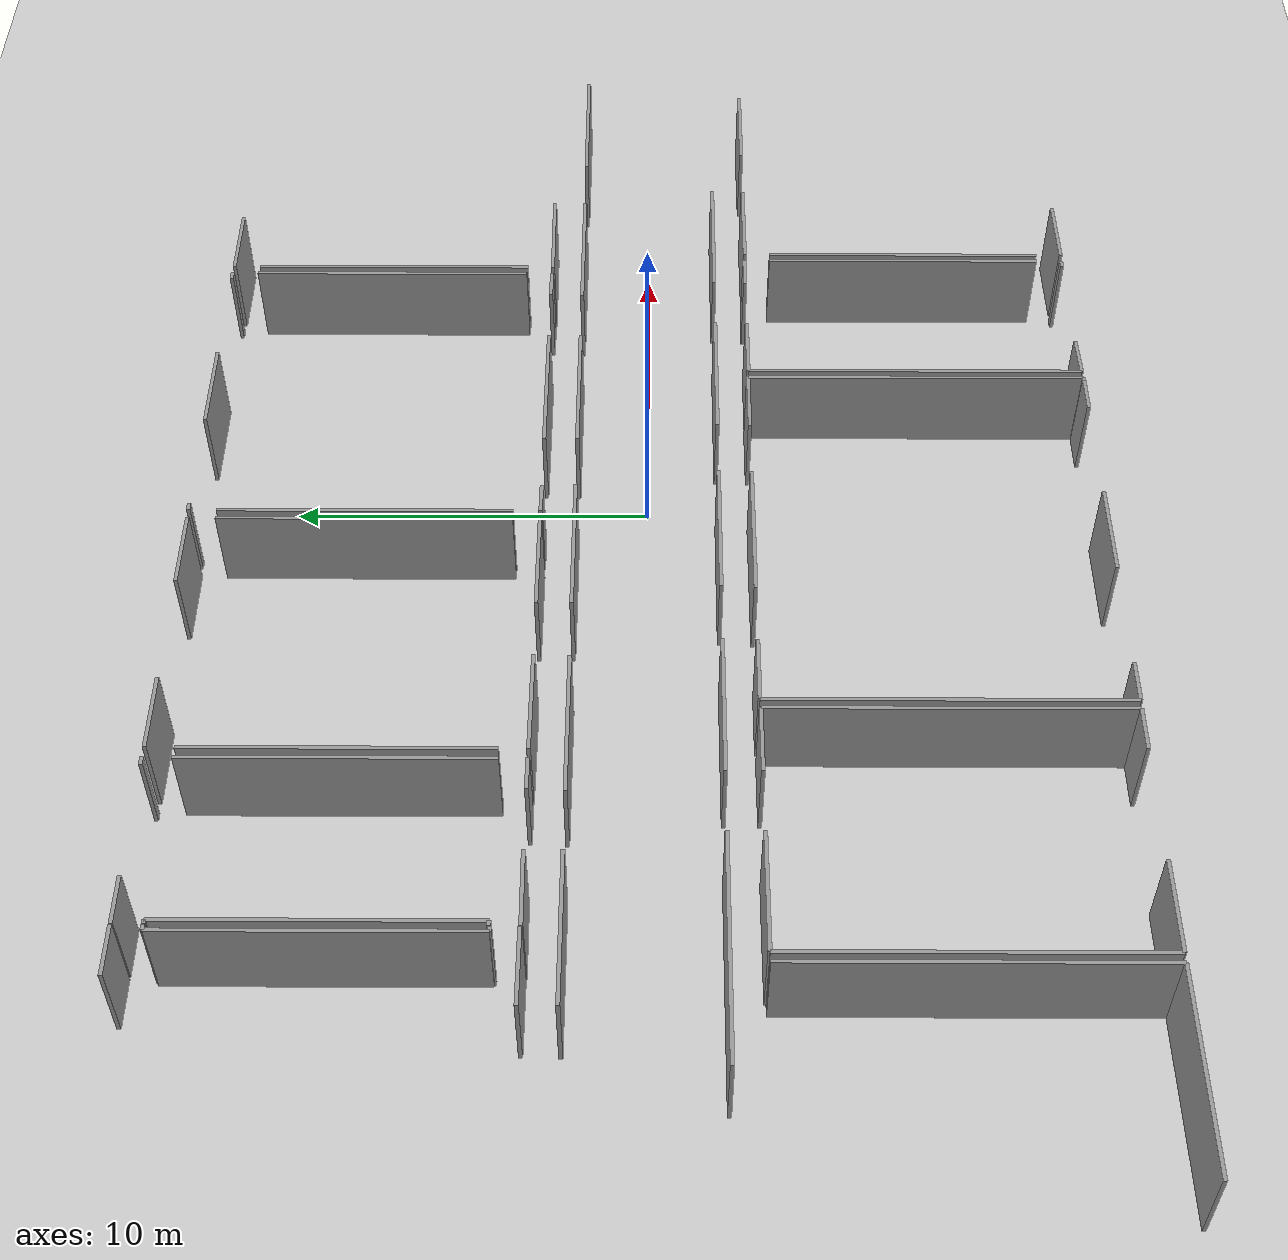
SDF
<sdf version="1.6">
 <world name="default">
  <model name="ground_plane">
   <static>1</static>
   <link name="link">
    <collision name="collision">
     <geometry><plane><normal>0 0 1</normal><size>100 100</size></plane></geometry>
     <surface><friction><ode><mu>100</mu><mu2>50</mu2></ode></friction></surface>
    </collision>
    <visual name="visual">
     <cast_shadows>0</cast_shadows>
     <geometry><plane><normal>0 0 1</normal><size>100 100</size></plane></geometry>
     <material>
      <script><uri>file://media/materials/scripts/gazebo.material</uri><name>Gazebo/Grey</name></script>
     </material>
    </visual>
   </link>
  </model>
  <model name="50052752">
   <static>1</static>
   <link name="Wall_23">
    <collision name="Wall_23_Collision">
     <geometry><box><size>4.22614742345 0.1 2.5</size></box></geometry>
     <pose>2.11307371173 0 1.25 0 0 0</pose>
    </collision>
    <visual name="Wall_23_Visual">
     <pose>2.11307371173 0 1.25 0 0 0</pose>
     <geometry><box><size>4.22614742345 0.1 2.5</size></box></geometry>
     <material>
      <script><uri>file://media/materials/scripts/gazebo.material</uri><name>Gazebo/Grey</name></script>
      <ambient>1 1 1 1</ambient>
     </material>
    </visual>
    <pose>21.8066922989 -10.5651782202 0 0 0 0.0</pose>
   </link>
   <link name="Wall_24">
    <collision name="Wall_24_Collision">
     <geometry><box><size>4.23706015963 0.1 2.5</size></box></geometry>
     <pose>2.11853007982 0 1.25 0 0 0</pose>
    </collision>
    <visual name="Wall_24_Visual">
     <pose>2.11853007982 0 1.25 0 0 0</pose>
     <geometry><box><size>4.23706015963 0.1 2.5</size></box></geometry>
     <material>
      <script><uri>file://media/materials/scripts/gazebo.material</uri><name>Gazebo/Grey</name></script>
      <ambient>1 1 1 1</ambient>
     </material>
    </visual>
    <pose>27.7805271105 -10.5651782202 0 0 0 0.0</pose>
   </link>
   <link name="Wall_25">
    <collision name="Wall_25_Collision">
     <geometry><box><size>4.22893905364 0.1 2.5</size></box></geometry>
     <pose>2.11446952682 0 1.25 0 0 0</pose>
    </collision>
    <visual name="Wall_25_Visual">
     <pose>2.11446952682 0 1.25 0 0 0</pose>
     <geometry><box><size>4.22893905364 0.1 2.5</size></box></geometry>
     <material>
      <script><uri>file://media/materials/scripts/gazebo.material</uri><name>Gazebo/Grey</name></script>
      <ambient>1 1 1 1</ambient>
     </material>
    </visual>
    <pose>33.8048650501 -10.5651782202 0 0 0 0.0</pose>
   </link>
   <link name="Wall_26">
    <collision name="Wall_26_Collision">
     <geometry><box><size>4.23820219016 0.1 2.5</size></box></geometry>
     <pose>2.11910109508 0 1.25 0 0 0</pose>
    </collision>
    <visual name="Wall_26_Visual">
     <pose>2.11910109508 0 1.25 0 0 0</pose>
     <geometry><box><size>4.23820219016 0.1 2.5</size></box></geometry>
     <material>
      <script><uri>file://media/materials/scripts/gazebo.material</uri><name>Gazebo/Grey</name></script>
      <ambient>1 1 1 1</ambient>
     </material>
    </visual>
    <pose>39.7934193663 -10.5651782202 0 0 0 0.0</pose>
   </link>
   <link name="Wall_27">
    <collision name="Wall_27_Collision">
     <geometry><box><size>4.2318575761 0.1 2.5</size></box></geometry>
     <pose>2.11592878805 0 1.25 0 0 0</pose>
    </collision>
    <visual name="Wall_27_Visual">
     <pose>2.11592878805 0 1.25 0 0 0</pose>
     <geometry><box><size>4.2318575761 0.1 2.5</size></box></geometry>
     <material>
      <script><uri>file://media/materials/scripts/gazebo.material</uri><name>Gazebo/Grey</name></script>
      <ambient>1 1 1 1</ambient>
     </material>
    </visual>
    <pose>45.7694113467 -10.5651782202 0 0 0 0.0</pose>
   </link>
   <link name="Wall_28">
    <collision name="Wall_28_Collision">
     <geometry><box><size>4.22678188486 0.1 2.5</size></box></geometry>
     <pose>2.11339094243 0 1.25 0 0 0</pose>
    </collision>
    <visual name="Wall_28_Visual">
     <pose>2.11339094243 0 1.25 0 0 0</pose>
     <geometry><box><size>4.22678188486 0.1 2.5</size></box></geometry>
     <material>
      <script><uri>file://media/materials/scripts/gazebo.material</uri><name>Gazebo/Grey</name></script>
      <ambient>1 1 1 1</ambient>
     </material>
    </visual>
    <pose>51.7961602396 -10.5651782202 0 0 0 0.0</pose>
   </link>
   <link name="Wall_38">
    <collision name="Wall_38_Collision">
     <geometry><box><size>4.25051074143 0.1 2.5</size></box></geometry>
     <pose>2.12525537072 0 1.25 0 0 0</pose>
    </collision>
    <visual name="Wall_38_Visual">
     <pose>2.12525537072 0 1.25 0 0 0</pose>
     <geometry><box><size>4.25051074143 0.1 2.5</size></box></geometry>
     <material>
      <script><uri>file://media/materials/scripts/gazebo.material</uri><name>Gazebo/Grey</name></script>
      <ambient>1 1 1 1</ambient>
     </material>
    </visual>
    <pose>50.6004542744 -14.5209181925 0 0 0 3.14159265359</pose>
   </link>
   <link name="Wall_39">
    <collision name="Wall_39_Collision">
     <geometry><box><size>4.21218927253 0.1 2.5</size></box></geometry>
     <pose>2.10609463626 0 1.25 0 0 0</pose>
    </collision>
    <visual name="Wall_39_Visual">
     <pose>2.10609463626 0 1.25 0 0 0</pose>
     <geometry><box><size>4.21218927253 0.1 2.5</size></box></geometry>
     <material>
      <script><uri>file://media/materials/scripts/gazebo.material</uri><name>Gazebo/Grey</name></script>
      <ambient>1 1 1 1</ambient>
     </material>
    </visual>
    <pose>44.5844912254 -14.5209181925 0 0 0 3.14159265359</pose>
   </link>
   <link name="Wall_40">
    <collision name="Wall_40_Collision">
     <geometry><box><size>4.19670841423 0.1 2.5</size></box></geometry>
     <pose>2.09835420711 0 1.25 0 0 0</pose>
    </collision>
    <visual name="Wall_40_Visual">
     <pose>2.09835420711 0 1.25 0 0 0</pose>
     <geometry><box><size>4.19670841423 0.1 2.5</size></box></geometry>
     <material>
      <script><uri>file://media/materials/scripts/gazebo.material</uri><name>Gazebo/Grey</name></script>
      <ambient>1 1 1 1</ambient>
     </material>
    </visual>
    <pose>38.5826132196 -14.5209181925 0 0 0 3.14159265359</pose>
   </link>
   <link name="Wall_41">
    <collision name="Wall_41_Collision">
     <geometry><box><size>4.20254545916 0.1 2.5</size></box></geometry>
     <pose>2.10127272958 0 1.25 0 0 0</pose>
    </collision>
    <visual name="Wall_41_Visual">
     <pose>2.10127272958 0 1.25 0 0 0</pose>
     <geometry><box><size>4.20254545916 0.1 2.5</size></box></geometry>
     <material>
      <script><uri>file://media/materials/scripts/gazebo.material</uri><name>Gazebo/Grey</name></script>
      <ambient>1 1 1 1</ambient>
     </material>
    </visual>
    <pose>32.581242783 -14.5209181925 0 0 0 3.14159265359</pose>
   </link>
   <link name="Wall_42">
    <collision name="Wall_42_Collision">
     <geometry><box><size>6.28941591483 0.1 2.5</size></box></geometry>
     <pose>3.14470795741 0 1.25 0 0 0</pose>
    </collision>
    <visual name="Wall_42_Visual">
     <pose>3.14470795741 0 1.25 0 0 0</pose>
     <geometry><box><size>6.28941591483 0.1 2.5</size></box></geometry>
     <material>
      <script><uri>file://media/materials/scripts/gazebo.material</uri><name>Gazebo/Grey</name></script>
      <ambient>1 1 1 1</ambient>
     </material>
    </visual>
    <pose>26.5947187433 -14.5209181925 0 0 0 3.14159265359</pose>
   </link>
   <link name="Wall_47">
    <collision name="Wall_47_Collision">
     <geometry><box><size>1.35774740823 0.1 2.5</size></box></geometry>
     <pose>0.678873704113 0 1.25 0 0 0</pose>
    </collision>
    <visual name="Wall_47_Visual">
     <pose>0.678873704113 0 1.25 0 0 0</pose>
     <geometry><box><size>1.35774740823 0.1 2.5</size></box></geometry>
     <material>
      <script><uri>file://media/materials/scripts/gazebo.material</uri><name>Gazebo/Grey</name></script>
      <ambient>1 1 1 1</ambient>
     </material>
    </visual>
    <pose>22.5360691309 -0.0 0 0 0 0.0</pose>
   </link>
   <link name="Wall_48">
    <collision name="Wall_48_Collision">
     <geometry><box><size>0.130191480452 0.1 2.5</size></box></geometry>
     <pose>0.0650957402261 0 1.25 0 0 0</pose>
    </collision>
    <visual name="Wall_48_Visual">
     <pose>0.0650957402261 0 1.25 0 0 0</pose>
     <geometry><box><size>0.130191480452 0.1 2.5</size></box></geometry>
     <material>
      <script><uri>file://media/materials/scripts/gazebo.material</uri><name>Gazebo/Grey</name></script>
      <ambient>1 1 1 1</ambient>
     </material>
    </visual>
    <pose>23.8938165391 -0.778611037091 0 0 0 3.14159265359</pose>
   </link>
   <link name="Wall_49">
    <collision name="Wall_49_Collision">
     <geometry><box><size>8.12681614577 0.1 2.5</size></box></geometry>
     <pose>4.06340807289 0 1.25 0 0 0</pose>
    </collision>
    <visual name="Wall_49_Visual">
     <pose>4.06340807289 0 1.25 0 0 0</pose>
     <geometry><box><size>8.12681614577 0.1 2.5</size></box></geometry>
     <material>
      <script><uri>file://media/materials/scripts/gazebo.material</uri><name>Gazebo/Grey</name></script>
      <ambient>1 1 1 1</ambient>
     </material>
    </visual>
    <pose>23.7636250587 -0.778611037091 0 0 0 -1.57079632679</pose>
   </link>
   <link name="Wall_50">
    <collision name="Wall_50_Collision">
     <geometry><box><size>0.115091298996 0.1 2.5</size></box></geometry>
     <pose>0.0575456494981 0 1.25 0 0 0</pose>
    </collision>
    <visual name="Wall_50_Visual">
     <pose>0.0575456494981 0 1.25 0 0 0</pose>
     <geometry><box><size>0.115091298996 0.1 2.5</size></box></geometry>
     <material>
      <script><uri>file://media/materials/scripts/gazebo.material</uri><name>Gazebo/Grey</name></script>
      <ambient>1 1 1 1</ambient>
     </material>
    </visual>
    <pose>23.7636250587 -8.90542718286 0 0 0 0.0</pose>
   </link>
   <link name="Wall_51">
    <collision name="Wall_51_Collision">
     <geometry><box><size>2.0725316279 0.1 2.5</size></box></geometry>
     <pose>1.03626581395 0 1.25 0 0 0</pose>
    </collision>
    <visual name="Wall_51_Visual">
     <pose>1.03626581395 0 1.25 0 0 0</pose>
     <geometry><box><size>2.0725316279 0.1 2.5</size></box></geometry>
     <material>
      <script><uri>file://media/materials/scripts/gazebo.material</uri><name>Gazebo/Grey</name></script>
      <ambient>1 1 1 1</ambient>
     </material>
    </visual>
    <pose>23.8787163577 -9.61551638814 0 0 0 3.14159265359</pose>
   </link>
   <link name="Wall_53">
    <collision name="Wall_53_Collision">
     <geometry><box><size>0.125115789207 0.1 2.5</size></box></geometry>
     <pose>0.0625578946033 0 1.25 0 0 0</pose>
    </collision>
    <visual name="Wall_53_Visual">
     <pose>0.0625578946033 0 1.25 0 0 0</pose>
     <geometry><box><size>0.125115789207 0.1 2.5</size></box></geometry>
     <material>
      <script><uri>file://media/materials/scripts/gazebo.material</uri><name>Gazebo/Grey</name></script>
      <ambient>1 1 1 1</ambient>
     </material>
    </visual>
    <pose>23.9233824406 -8.88423617191 0 0 0 0.0</pose>
   </link>
   <link name="Wall_54">
    <collision name="Wall_54_Collision">
     <geometry><box><size>8.10613270395 0.1 2.5</size></box></geometry>
     <pose>4.05306635197 0 1.25 0 0 0</pose>
    </collision>
    <visual name="Wall_54_Visual">
     <pose>4.05306635197 0 1.25 0 0 0</pose>
     <geometry><box><size>8.10613270395 0.1 2.5</size></box></geometry>
     <material>
      <script><uri>file://media/materials/scripts/gazebo.material</uri><name>Gazebo/Grey</name></script>
      <ambient>1 1 1 1</ambient>
     </material>
    </visual>
    <pose>24.0484982299 -8.88423617191 0 0 0 1.57079632679</pose>
   </link>
   <link name="Wall_55">
    <collision name="Wall_55_Collision">
     <geometry><box><size>0.111284530562 0.1 2.5</size></box></geometry>
     <pose>0.055642265281 0 1.25 0 0 0</pose>
    </collision>
    <visual name="Wall_55_Visual">
     <pose>0.055642265281 0 1.25 0 0 0</pose>
     <geometry><box><size>0.111284530562 0.1 2.5</size></box></geometry>
     <material>
      <script><uri>file://media/materials/scripts/gazebo.material</uri><name>Gazebo/Grey</name></script>
      <ambient>1 1 1 1</ambient>
     </material>
    </visual>
    <pose>24.0484982299 -0.778103467966 0 0 0 3.14159265359</pose>
   </link>
   <link name="Wall_56">
    <collision name="Wall_56_Collision">
     <geometry><box><size>1.32488230741 0.1 2.5</size></box></geometry>
     <pose>0.662441153705 0 1.25 0 0 0</pose>
    </collision>
    <visual name="Wall_56_Visual">
     <pose>0.662441153705 0 1.25 0 0 0</pose>
     <geometry><box><size>1.32488230741 0.1 2.5</size></box></geometry>
     <material>
      <script><uri>file://media/materials/scripts/gazebo.material</uri><name>Gazebo/Grey</name></script>
      <ambient>1 1 1 1</ambient>
     </material>
    </visual>
    <pose>23.9372136993 -0.00837489055541 0 0 0 0.0</pose>
   </link>
   <link name="Wall_57">
    <collision name="Wall_57_Collision">
     <geometry><box><size>0.227137183245 0.1 2.5</size></box></geometry>
     <pose>0.113568591623 0 1.25 0 0 0</pose>
    </collision>
    <visual name="Wall_57_Visual">
     <pose>0.113568591623 0 1.25 0 0 0</pose>
     <geometry><box><size>0.227137183245 0.1 2.5</size></box></geometry>
     <material>
      <script><uri>file://media/materials/scripts/gazebo.material</uri><name>Gazebo/Grey</name></script>
      <ambient>1 1 1 1</ambient>
     </material>
    </visual>
    <pose>28.5237352012 -0.00837489055541 0 0 0 0.0</pose>
   </link>
   <link name="Wall_58">
    <collision name="Wall_58_Collision">
     <geometry><box><size>8.1320187293 0.1 2.5</size></box></geometry>
     <pose>4.06600936465 0 1.25 0 0 0</pose>
    </collision>
    <visual name="Wall_58_Visual">
     <pose>4.06600936465 0 1.25 0 0 0</pose>
     <geometry><box><size>8.1320187293 0.1 2.5</size></box></geometry>
     <material>
      <script><uri>file://media/materials/scripts/gazebo.material</uri><name>Gazebo/Grey</name></script>
      <ambient>1 1 1 1</ambient>
     </material>
    </visual>
    <pose>28.7508723844 -0.752851904019 0 0 0 -1.57079632679</pose>
   </link>
   <link name="Wall_59">
    <collision name="Wall_59_Collision">
     <geometry><box><size>0.921111068814 0.1 2.5</size></box></geometry>
     <pose>0.460555534407 0 1.25 0 0 0</pose>
    </collision>
    <visual name="Wall_59_Visual">
     <pose>0.460555534407 0 1.25 0 0 0</pose>
     <geometry><box><size>0.921111068814 0.1 2.5</size></box></geometry>
     <material>
      <script><uri>file://media/materials/scripts/gazebo.material</uri><name>Gazebo/Grey</name></script>
      <ambient>1 1 1 1</ambient>
     </material>
    </visual>
    <pose>28.7508723844 -9.61044069689 0 0 0 3.14159265359</pose>
   </link>
   <link name="Wall_60">
    <collision name="Wall_60_Collision">
     <geometry><box><size>2.12051291307 0.1 2.5</size></box></geometry>
     <pose>1.06025645654 0 1.25 0 0 0</pose>
    </collision>
    <visual name="Wall_60_Visual">
     <pose>1.06025645654 0 1.25 0 0 0</pose>
     <geometry><box><size>2.12051291307 0.1 2.5</size></box></geometry>
     <material>
      <script><uri>file://media/materials/scripts/gazebo.material</uri><name>Gazebo/Grey</name></script>
      <ambient>1 1 1 1</ambient>
     </material>
    </visual>
    <pose>26.0437524585 -9.61044069689 0 0 0 -3.12998336069</pose>
   </link>
   <link name="Wall_61">
    <collision name="Wall_61_Collision">
     <geometry><box><size>8.09534686005 0.1 2.5</size></box></geometry>
     <pose>4.04767343003 0 1.25 0 0 0</pose>
    </collision>
    <visual name="Wall_61_Visual">
     <pose>4.04767343003 0 1.25 0 0 0</pose>
     <geometry><box><size>8.09534686005 0.1 2.5</size></box></geometry>
     <material>
      <script><uri>file://media/materials/scripts/gazebo.material</uri><name>Gazebo/Grey</name></script>
      <ambient>1 1 1 1</ambient>
     </material>
    </visual>
    <pose>29.0503381679 -8.86710571396 0 0 0 1.57079632679</pose>
   </link>
   <link name="Wall_62">
    <collision name="Wall_62_Collision">
     <geometry><box><size>2.2051340617 0.1 2.5</size></box></geometry>
     <pose>1.10256703085 0 1.25 0 0 0</pose>
    </collision>
    <visual name="Wall_62_Visual">
     <pose>1.10256703085 0 1.25 0 0 0</pose>
     <geometry><box><size>2.2051340617 0.1 2.5</size></box></geometry>
     <material>
      <script><uri>file://media/materials/scripts/gazebo.material</uri><name>Gazebo/Grey</name></script>
      <ambient>1 1 1 1</ambient>
     </material>
    </visual>
    <pose>29.0503381679 -0.0210641186697 0 0 0 0.0</pose>
   </link>
   <link name="Wall_63">
    <collision name="Wall_63_Collision">
     <geometry><box><size>2.25855571206 0.1 2.5</size></box></geometry>
     <pose>1.12927785603 0 1.25 0 0 0</pose>
    </collision>
    <visual name="Wall_63_Visual">
     <pose>1.12927785603 0 1.25 0 0 0</pose>
     <geometry><box><size>2.25855571206 0.1 2.5</size></box></geometry>
     <material>
      <script><uri>file://media/materials/scripts/gazebo.material</uri><name>Gazebo/Grey</name></script>
      <ambient>1 1 1 1</ambient>
     </material>
    </visual>
    <pose>34.5171114241 -0.0210641186697 0 0 0 0.0</pose>
   </link>
   <link name="Wall_64">
    <collision name="Wall_64_Collision">
     <geometry><box><size>8.10600581167 0.1 2.5</size></box></geometry>
     <pose>4.05300290583 0 1.25 0 0 0</pose>
    </collision>
    <visual name="Wall_64_Visual">
     <pose>4.05300290583 0 1.25 0 0 0</pose>
     <geometry><box><size>8.10600581167 0.1 2.5</size></box></geometry>
     <material>
      <script><uri>file://media/materials/scripts/gazebo.material</uri><name>Gazebo/Grey</name></script>
      <ambient>1 1 1 1</ambient>
     </material>
    </visual>
    <pose>36.7756671362 -0.778103467966 0 0 0 -1.57079632679</pose>
   </link>
   <link name="Wall_65">
    <collision name="Wall_65_Collision">
     <geometry><box><size>2.97740048473 0.1 2.5</size></box></geometry>
     <pose>1.48870024236 0 1.25 0 0 0</pose>
    </collision>
    <visual name="Wall_65_Visual">
     <pose>1.48870024236 0 1.25 0 0 0</pose>
     <geometry><box><size>2.97740048473 0.1 2.5</size></box></geometry>
     <material>
      <script><uri>file://media/materials/scripts/gazebo.material</uri><name>Gazebo/Grey</name></script>
      <ambient>1 1 1 1</ambient>
     </material>
    </visual>
    <pose>36.7756671362 -9.62820561625 0 0 0 3.14159265359</pose>
   </link>
   <link name="Wall_66">
    <collision name="Wall_66_Collision">
     <geometry><box><size>2.97450902845 0.1 2.5</size></box></geometry>
     <pose>1.48725451423 0 1.25 0 0 0</pose>
    </collision>
    <visual name="Wall_66_Visual">
     <pose>1.48725451423 0 1.25 0 0 0</pose>
     <geometry><box><size>2.97450902845 0.1 2.5</size></box></geometry>
     <material>
      <script><uri>file://media/materials/scripts/gazebo.material</uri><name>Gazebo/Grey</name></script>
      <ambient>1 1 1 1</ambient>
     </material>
    </visual>
    <pose>32.0248201302 -9.62820561625 0 0 0 3.13732664986</pose>
   </link>
   <link name="Wall_67">
    <collision name="Wall_67_Collision">
     <geometry><box><size>8.10384864289 0.1 2.5</size></box></geometry>
     <pose>4.05192432144 0 1.25 0 0 0</pose>
    </collision>
    <visual name="Wall_67_Visual">
     <pose>4.05192432144 0 1.25 0 0 0</pose>
     <geometry><box><size>8.10384864289 0.1 2.5</size></box></geometry>
     <material>
      <script><uri>file://media/materials/scripts/gazebo.material</uri><name>Gazebo/Grey</name></script>
      <ambient>1 1 1 1</ambient>
     </material>
    </visual>
    <pose>37.0668849214 -8.88245967998 0 0 0 1.57079632679</pose>
   </link>
   <link name="Wall_68">
    <collision name="Wall_68_Collision">
     <geometry><box><size>0.215843770223 0.1 2.5</size></box></geometry>
     <pose>0.107921885112 0 1.25 0 0 0</pose>
    </collision>
    <visual name="Wall_68_Visual">
     <pose>0.107921885112 0 1.25 0 0 0</pose>
     <geometry><box><size>0.215843770223 0.1 2.5</size></box></geometry>
     <material>
      <script><uri>file://media/materials/scripts/gazebo.material</uri><name>Gazebo/Grey</name></script>
      <ambient>1 1 1 1</ambient>
     </material>
    </visual>
    <pose>37.0668849214 -0.00139581509257 0 0 0 0.0</pose>
   </link>
   <link name="Wall_69">
    <collision name="Wall_69_Collision">
     <geometry><box><size>2.74429936427 0.1 2.5</size></box></geometry>
     <pose>1.37214968213 0 1.25 0 0 0</pose>
    </collision>
    <visual name="Wall_69_Visual">
     <pose>1.37214968213 0 1.25 0 0 0</pose>
     <geometry><box><size>2.74429936427 0.1 2.5</size></box></geometry>
     <material>
      <script><uri>file://media/materials/scripts/gazebo.material</uri><name>Gazebo/Grey</name></script>
      <ambient>1 1 1 1</ambient>
     </material>
    </visual>
    <pose>40.4977984189 -0.00139581509257 0 0 0 0.0</pose>
   </link>
   <link name="Wall_70">
    <collision name="Wall_70_Collision">
     <geometry><box><size>0.252388747193 0.1 2.5</size></box></geometry>
     <pose>0.126194373596 0 1.25 0 0 0</pose>
    </collision>
    <visual name="Wall_70_Visual">
     <pose>0.126194373596 0 1.25 0 0 0</pose>
     <geometry><box><size>0.252388747193 0.1 2.5</size></box></geometry>
     <material>
      <script><uri>file://media/materials/scripts/gazebo.material</uri><name>Gazebo/Grey</name></script>
      <ambient>1 1 1 1</ambient>
     </material>
    </visual>
    <pose>46.4848300278 -0.00139581509257 0 0 0 0.0</pose>
   </link>
   <link name="Wall_71">
    <collision name="Wall_71_Collision">
     <geometry><box><size>8.11044704151 0.1 2.5</size></box></geometry>
     <pose>4.05522352075 0 1.25 0 0 0</pose>
    </collision>
    <visual name="Wall_71_Visual">
     <pose>4.05522352075 0 1.25 0 0 0</pose>
     <geometry><box><size>8.11044704151 0.1 2.5</size></box></geometry>
     <material>
      <script><uri>file://media/materials/scripts/gazebo.material</uri><name>Gazebo/Grey</name></script>
      <ambient>1 1 1 1</ambient>
     </material>
    </visual>
    <pose>46.737218775 -0.765414239852 0 0 0 -1.57079632679</pose>
   </link>
   <link name="Wall_72">
    <collision name="Wall_72_Collision">
     <geometry><box><size>0.937480173081 0.1 2.5</size></box></geometry>
     <pose>0.468740086541 0 1.25 0 0 0</pose>
    </collision>
    <visual name="Wall_72_Visual">
     <pose>0.468740086541 0 1.25 0 0 0</pose>
     <geometry><box><size>0.937480173081 0.1 2.5</size></box></geometry>
     <material>
      <script><uri>file://media/materials/scripts/gazebo.material</uri><name>Gazebo/Grey</name></script>
      <ambient>1 1 1 1</ambient>
     </material>
    </visual>
    <pose>46.737218775 -9.63505779943 0 0 0 3.14159265359</pose>
   </link>
   <link name="Wall_73">
    <collision name="Wall_73_Collision">
     <geometry><box><size>4.23693326735 0.1 2.5</size></box></geometry>
     <pose>2.11846663367 0 1.25 0 0 0</pose>
    </collision>
    <visual name="Wall_73_Visual">
     <pose>2.11846663367 0 1.25 0 0 0</pose>
     <geometry><box><size>4.23693326735 0.1 2.5</size></box></geometry>
     <material>
      <script><uri>file://media/materials/scripts/gazebo.material</uri><name>Gazebo/Grey</name></script>
      <ambient>1 1 1 1</ambient>
     </material>
    </visual>
    <pose>44.0392350933 -9.63505779943 0 0 0 3.14159265359</pose>
   </link>
   <link name="Wall_74">
    <collision name="Wall_74_Collision">
     <geometry><box><size>0.945096469955 0.1 2.5</size></box></geometry>
     <pose>0.472548234977 0 1.25 0 0 0</pose>
    </collision>
    <visual name="Wall_74_Visual">
     <pose>0.472548234977 0 1.25 0 0 0</pose>
     <geometry><box><size>0.945096469955 0.1 2.5</size></box></geometry>
     <material>
      <script><uri>file://media/materials/scripts/gazebo.material</uri><name>Gazebo/Grey</name></script>
      <ambient>1 1 1 1</ambient>
     </material>
    </visual>
    <pose>38.0119786313 -9.63505779943 0 0 0 3.13917590212</pose>
   </link>
   <link name="Wall_75">
    <collision name="Wall_75_Collision">
     <geometry><box><size>8.11425380994 0.1 2.5</size></box></geometry>
     <pose>4.05712690497 0 1.25 0 0 0</pose>
    </collision>
    <visual name="Wall_75_Visual">
     <pose>4.05712690497 0 1.25 0 0 0</pose>
     <geometry><box><size>8.11425380994 0.1 2.5</size></box></geometry>
     <material>
      <script><uri>file://media/materials/scripts/gazebo.material</uri><name>Gazebo/Grey</name></script>
      <ambient>1 1 1 1</ambient>
     </material>
    </visual>
    <pose>47.0312281904 -8.90542718286 0 0 0 1.57079632679</pose>
   </link>
   <link name="Wall_76">
    <collision name="Wall_76_Collision">
     <geometry><box><size>2.24764297588 0.1 2.5</size></box></geometry>
     <pose>1.12382148794 0 1.25 0 0 0</pose>
    </collision>
    <visual name="Wall_76_Visual">
     <pose>1.12382148794 0 1.25 0 0 0</pose>
     <geometry><box><size>2.24764297588 0.1 2.5</size></box></geometry>
     <material>
      <script><uri>file://media/materials/scripts/gazebo.material</uri><name>Gazebo/Grey</name></script>
      <ambient>1 1 1 1</ambient>
     </material>
    </visual>
    <pose>47.0312281904 -0.0236019642925 0 0 0 0.0</pose>
   </link>
   <link name="Wall_80">
    <collision name="Wall_80_Collision">
     <geometry><box><size>2.98197961406 0.1 2.5</size></box></geometry>
     <pose>1.49098980703 0 1.25 0 0 0</pose>
    </collision>
    <visual name="Wall_80_Visual">
     <pose>1.49098980703 0 1.25 0 0 0</pose>
     <geometry><box><size>2.98197961406 0.1 2.5</size></box></geometry>
     <material>
      <script><uri>file://media/materials/scripts/gazebo.material</uri><name>Gazebo/Grey</name></script>
      <ambient>1 1 1 1</ambient>
     </material>
    </visual>
    <pose>50.013069905 -9.6251602015 0 0 0 -3.13197551957</pose>
   </link>
   <link name="Wall_132">
    <collision name="Wall_132_Collision">
     <geometry><box><size>8.10549824254 0.1 2.5</size></box></geometry>
     <pose>4.05274912127 0 1.25 0 0 0</pose>
    </collision>
    <visual name="Wall_132_Visual">
     <pose>4.05274912127 0 1.25 0 0 0</pose>
     <geometry><box><size>8.10549824254 0.1 2.5</size></box></geometry>
     <material>
      <script><uri>file://media/materials/scripts/gazebo.material</uri><name>Gazebo/Grey</name></script>
      <ambient>1 1 1 1</ambient>
     </material>
    </visual>
    <pose>47.6260992044 -24.3224586648 0 0 0 1.57079632679</pose>
   </link>
   <link name="Wall_133">
    <collision name="Wall_133_Collision">
     <geometry><box><size>2.92816627965 0.1 2.5</size></box></geometry>
     <pose>1.46408313982 0 1.25 0 0 0</pose>
    </collision>
    <visual name="Wall_133_Visual">
     <pose>1.46408313982 0 1.25 0 0 0</pose>
     <geometry><box><size>2.92816627965 0.1 2.5</size></box></geometry>
     <material>
      <script><uri>file://media/materials/scripts/gazebo.material</uri><name>Gazebo/Grey</name></script>
      <ambient>1 1 1 1</ambient>
     </material>
    </visual>
    <pose>47.6260992044 -15.4696917786 0 0 0 0.0</pose>
   </link>
   <link name="Wall_134">
    <collision name="Wall_134_Collision">
     <geometry><box><size>2.93692184704 0.1 2.5</size></box></geometry>
     <pose>1.46846092352 0 1.25 0 0 0</pose>
    </collision>
    <visual name="Wall_134_Visual">
     <pose>1.46846092352 0 1.25 0 0 0</pose>
     <geometry><box><size>2.93692184704 0.1 2.5</size></box></geometry>
     <material>
      <script><uri>file://media/materials/scripts/gazebo.material</uri><name>Gazebo/Grey</name></script>
      <ambient>1 1 1 1</ambient>
     </material>
    </visual>
    <pose>52.3467458475 -15.4696917786 0 0 0 0.0</pose>
   </link>
   <link name="Wall_137">
    <collision name="Wall_137_Collision">
     <geometry><box><size>2.17679564198 0.1 2.5</size></box></geometry>
     <pose>1.08839782099 0 1.25 0 0 0</pose>
    </collision>
    <visual name="Wall_137_Visual">
     <pose>1.08839782099 0 1.25 0 0 0</pose>
     <geometry><box><size>2.17679564198 0.1 2.5</size></box></geometry>
     <material>
      <script><uri>file://media/materials/scripts/gazebo.material</uri><name>Gazebo/Grey</name></script>
      <ambient>1 1 1 1</ambient>
     </material>
    </visual>
    <pose>49.8028093951 -25.0536119888 0 0 0 -3.13273197841</pose>
   </link>
   <link name="Wall_138">
    <collision name="Wall_138_Collision">
     <geometry><box><size>9.64165619805 0.1 2.5</size></box></geometry>
     <pose>4.82082809903 0 1.25 0 0 0</pose>
    </collision>
    <visual name="Wall_138_Visual">
     <pose>4.82082809903 0 1.25 0 0 0</pose>
     <geometry><box><size>9.64165619805 0.1 2.5</size></box></geometry>
     <material>
      <script><uri>file://media/materials/scripts/gazebo.material</uri><name>Gazebo/Grey</name></script>
      <ambient>1 1 1 1</ambient>
     </material>
    </visual>
    <pose>42.5790856142 -25.09206035 0 0 0 1.57079632679</pose>
   </link>
   <link name="Wall_139">
    <collision name="Wall_139_Collision">
     <geometry><box><size>1.99411219815 0.1 2.5</size></box></geometry>
     <pose>0.997056099077 0 1.25 0 0 0</pose>
    </collision>
    <visual name="Wall_139_Visual">
     <pose>0.997056099077 0 1.25 0 0 0</pose>
     <geometry><box><size>1.99411219815 0.1 2.5</size></box></geometry>
     <material>
      <script><uri>file://media/materials/scripts/gazebo.material</uri><name>Gazebo/Grey</name></script>
      <ambient>1 1 1 1</ambient>
     </material>
    </visual>
    <pose>42.5790856142 -15.4504041519 0 0 0 0.0</pose>
   </link>
   <link name="Wall_140">
    <collision name="Wall_140_Collision">
     <geometry><box><size>1.04813024224 0.1 2.5</size></box></geometry>
     <pose>0.524065121119 0 1.25 0 0 0</pose>
    </collision>
    <visual name="Wall_140_Visual">
     <pose>0.524065121119 0 1.25 0 0 0</pose>
     <geometry><box><size>1.04813024224 0.1 2.5</size></box></geometry>
     <material>
      <script><uri>file://media/materials/scripts/gazebo.material</uri><name>Gazebo/Grey</name></script>
      <ambient>1 1 1 1</ambient>
     </material>
    </visual>
    <pose>46.3135254482 -15.4504041519 0 0 0 0.0</pose>
   </link>
   <link name="Wall_141">
    <collision name="Wall_141_Collision">
     <geometry><box><size>8.0936972604 0.1 2.5</size></box></geometry>
     <pose>4.0468486302 0 1.25 0 0 0</pose>
    </collision>
    <visual name="Wall_141_Visual">
     <pose>4.0468486302 0 1.25 0 0 0</pose>
     <geometry><box><size>8.0936972604 0.1 2.5</size></box></geometry>
     <material>
      <script><uri>file://media/materials/scripts/gazebo.material</uri><name>Gazebo/Grey</name></script>
      <ambient>1 1 1 1</ambient>
     </material>
    </visual>
    <pose>47.3616556905 -16.2090931009 0 0 0 -1.57079632679</pose>
   </link>
   <link name="Wall_142">
    <collision name="Wall_142_Collision">
     <geometry><box><size>0.252008070349 0.1 2.5</size></box></geometry>
     <pose>0.126004035175 0 1.25 0 0 0</pose>
    </collision>
    <visual name="Wall_142_Visual">
     <pose>0.126004035175 0 1.25 0 0 0</pose>
     <geometry><box><size>0.252008070349 0.1 2.5</size></box></geometry>
     <material>
      <script><uri>file://media/materials/scripts/gazebo.material</uri><name>Gazebo/Grey</name></script>
      <ambient>1 1 1 1</ambient>
     </material>
    </visual>
    <pose>47.3616556905 -25.0536119888 0 0 0 3.14159265359</pose>
   </link>
   <link name="Wall_143">
    <collision name="Wall_143_Collision">
     <geometry><box><size>1.24375809853 0.1 2.5</size></box></geometry>
     <pose>0.621879049264 0 1.25 0 0 0</pose>
    </collision>
    <visual name="Wall_143_Visual">
     <pose>0.621879049264 0 1.25 0 0 0</pose>
     <geometry><box><size>1.24375809853 0.1 2.5</size></box></geometry>
     <material>
      <script><uri>file://media/materials/scripts/gazebo.material</uri><name>Gazebo/Grey</name></script>
      <ambient>1 1 1 1</ambient>
     </material>
    </visual>
    <pose>43.8222492926 -25.0536119888 0 0 0 -3.11067467403</pose>
   </link>
   <link name="Wall_144">
    <collision name="Wall_144_Collision">
     <geometry><box><size>1.10345527682 0.1 2.5</size></box></geometry>
     <pose>0.551727638408 0 1.25 0 0 0</pose>
    </collision>
    <visual name="Wall_144_Visual">
     <pose>0.551727638408 0 1.25 0 0 0</pose>
     <geometry><box><size>1.10345527682 0.1 2.5</size></box></geometry>
     <material>
      <script><uri>file://media/materials/scripts/gazebo.material</uri><name>Gazebo/Grey</name></script>
      <ambient>1 1 1 1</ambient>
     </material>
    </visual>
    <pose>42.2088139378 -25.1107135153 0 0 0 3.14159265359</pose>
   </link>
   <link name="Wall_145">
    <collision name="Wall_145_Collision">
     <geometry><box><size>2.75851129976 0.1 2.5</size></box></geometry>
     <pose>1.37925564988 0 1.25 0 0 0</pose>
    </collision>
    <visual name="Wall_145_Visual">
     <pose>1.37925564988 0 1.25 0 0 0</pose>
     <geometry><box><size>2.75851129976 0.1 2.5</size></box></geometry>
     <material>
      <script><uri>file://media/materials/scripts/gazebo.material</uri><name>Gazebo/Grey</name></script>
      <ambient>1 1 1 1</ambient>
     </material>
    </visual>
    <pose>37.8392782367 -25.1107135153 0 0 0 3.14159265359</pose>
   </link>
   <link name="Wall_146">
    <collision name="Wall_146_Collision">
     <geometry><box><size>1.22489118987 0.1 2.5</size></box></geometry>
     <pose>0.612445594934 0 1.25 0 0 0</pose>
    </collision>
    <visual name="Wall_146_Visual">
     <pose>0.612445594934 0 1.25 0 0 0</pose>
     <geometry><box><size>1.22489118987 0.1 2.5</size></box></geometry>
     <material>
      <script><uri>file://media/materials/scripts/gazebo.material</uri><name>Gazebo/Grey</name></script>
      <ambient>1 1 1 1</ambient>
     </material>
    </visual>
    <pose>31.847805398 -25.1107135153 0 0 0 3.14159265359</pose>
   </link>
   <link name="Wall_147">
    <collision name="Wall_147_Collision">
     <geometry><box><size>9.67401372974 0.1 2.5</size></box></geometry>
     <pose>4.83700686487 0 1.25 0 0 0</pose>
    </collision>
    <visual name="Wall_147_Visual">
     <pose>4.83700686487 0 1.25 0 0 0</pose>
     <geometry><box><size>9.67401372974 0.1 2.5</size></box></geometry>
     <material>
      <script><uri>file://media/materials/scripts/gazebo.material</uri><name>Gazebo/Grey</name></script>
      <ambient>1 1 1 1</ambient>
     </material>
    </visual>
    <pose>30.6229142081 -25.1107135153 0 0 0 1.57079632679</pose>
   </link>
   <link name="Wall_148">
    <collision name="Wall_148_Collision">
     <geometry><box><size>1.93104673443 0.1 2.5</size></box></geometry>
     <pose>0.965523367214 0 1.25 0 0 0</pose>
    </collision>
    <visual name="Wall_148_Visual">
     <pose>0.965523367214 0 1.25 0 0 0</pose>
     <geometry><box><size>1.93104673443 0.1 2.5</size></box></geometry>
     <material>
      <script><uri>file://media/materials/scripts/gazebo.material</uri><name>Gazebo/Grey</name></script>
      <ambient>1 1 1 1</ambient>
     </material>
    </visual>
    <pose>30.6229142081 -15.4366997856 0 0 0 0.0</pose>
   </link>
   <link name="Wall_149">
    <collision name="Wall_149_Collision">
     <geometry><box><size>4.22551296205 0.1 2.5</size></box></geometry>
     <pose>2.11275648102 0 1.25 0 0 0</pose>
    </collision>
    <visual name="Wall_149_Visual">
     <pose>2.11275648102 0 1.25 0 0 0</pose>
     <geometry><box><size>4.22551296205 0.1 2.5</size></box></geometry>
     <material>
      <script><uri>file://media/materials/scripts/gazebo.material</uri><name>Gazebo/Grey</name></script>
      <ambient>1 1 1 1</ambient>
     </material>
    </visual>
    <pose>34.3243620491 -15.4366997856 0 0 0 0.0</pose>
   </link>
   <link name="Wall_150">
    <collision name="Wall_150_Collision">
     <geometry><box><size>1.95731343662 0.1 2.5</size></box></geometry>
     <pose>0.978656718312 0 1.25 0 0 0</pose>
    </collision>
    <visual name="Wall_150_Visual">
     <pose>0.978656718312 0 1.25 0 0 0</pose>
     <geometry><box><size>1.95731343662 0.1 2.5</size></box></geometry>
     <material>
      <script><uri>file://media/materials/scripts/gazebo.material</uri><name>Gazebo/Grey</name></script>
      <ambient>1 1 1 1</ambient>
     </material>
    </visual>
    <pose>40.3531412184 -15.4366997856 0 0 0 0.0</pose>
   </link>
   <link name="Wall_151">
    <collision name="Wall_151_Collision">
     <geometry><box><size>9.67540954484 0.1 2.5</size></box></geometry>
     <pose>4.83770477242 0 1.25 0 0 0</pose>
    </collision>
    <visual name="Wall_151_Visual">
     <pose>4.83770477242 0 1.25 0 0 0</pose>
     <geometry><box><size>9.67540954484 0.1 2.5</size></box></geometry>
     <material>
      <script><uri>file://media/materials/scripts/gazebo.material</uri><name>Gazebo/Grey</name></script>
      <ambient>1 1 1 1</ambient>
     </material>
    </visual>
    <pose>42.310454655 -15.4366997856 0 0 0 -1.57079632679</pose>
   </link>
   <link name="Wall_152">
    <collision name="Wall_152_Collision">
     <geometry><box><size>0.101650300992 0.1 2.5</size></box></geometry>
     <pose>0.0508251504959 0 1.25 0 0 0</pose>
    </collision>
    <visual name="Wall_152_Visual">
     <pose>0.0508251504959 0 1.25 0 0 0</pose>
     <geometry><box><size>0.101650300992 0.1 2.5</size></box></geometry>
     <material>
      <script><uri>file://media/materials/scripts/gazebo.material</uri><name>Gazebo/Grey</name></script>
      <ambient>1 1 1 1</ambient>
     </material>
    </visual>
    <pose>42.310454655 -25.1121093304 0 0 0 3.12786068283</pose>
   </link>
   <link name="Wall_153">
    <collision name="Wall_153_Collision">
     <geometry><box><size>9.63607293768 0.1 2.5</size></box></geometry>
     <pose>4.81803646884 0 1.25 0 0 0</pose>
    </collision>
    <visual name="Wall_153_Visual">
     <pose>4.81803646884 0 1.25 0 0 0</pose>
     <geometry><box><size>9.63607293768 0.1 2.5</size></box></geometry>
     <material>
      <script><uri>file://media/materials/scripts/gazebo.material</uri><name>Gazebo/Grey</name></script>
      <ambient>1 1 1 1</ambient>
     </material>
    </visual>
    <pose>30.3580900174 -25.0915527808 0 0 0 1.57079632679</pose>
   </link>
   <link name="Wall_154">
    <collision name="Wall_154_Collision">
     <geometry><box><size>1.9722867258 0.1 2.5</size></box></geometry>
     <pose>0.986143362899 0 1.25 0 0 0</pose>
    </collision>
    <visual name="Wall_154_Visual">
     <pose>0.986143362899 0 1.25 0 0 0</pose>
     <geometry><box><size>1.9722867258 0.1 2.5</size></box></geometry>
     <material>
      <script><uri>file://media/materials/scripts/gazebo.material</uri><name>Gazebo/Grey</name></script>
      <ambient>1 1 1 1</ambient>
     </material>
    </visual>
    <pose>30.3580900174 -15.4554798432 0 0 0 3.14159265359</pose>
   </link>
   <link name="Wall_155">
    <collision name="Wall_155_Collision">
     <geometry><box><size>3.35706218991 0.1 2.5</size></box></geometry>
     <pose>1.67853109495 0 1.25 0 0 0</pose>
    </collision>
    <visual name="Wall_155_Visual">
     <pose>1.67853109495 0 1.25 0 0 0</pose>
     <geometry><box><size>3.35706218991 0.1 2.5</size></box></geometry>
     <material>
      <script><uri>file://media/materials/scripts/gazebo.material</uri><name>Gazebo/Grey</name></script>
      <ambient>1 1 1 1</ambient>
     </material>
    </visual>
    <pose>26.6037280952 -15.4554798432 0 0 0 3.14159265359</pose>
   </link>
   <link name="Wall_156">
    <collision name="Wall_156_Collision">
     <geometry><box><size>9.63112413872 0.1 2.5</size></box></geometry>
     <pose>4.81556206936 0 1.25 0 0 0</pose>
    </collision>
    <visual name="Wall_156_Visual">
     <pose>4.81556206936 0 1.25 0 0 0</pose>
     <geometry><box><size>9.63112413872 0.1 2.5</size></box></geometry>
     <material>
      <script><uri>file://media/materials/scripts/gazebo.material</uri><name>Gazebo/Grey</name></script>
      <ambient>1 1 1 1</ambient>
     </material>
    </visual>
    <pose>23.2466659053 -15.4554798432 0 0 0 -1.57079632679</pose>
   </link>
   <link name="Wall_157">
    <collision name="Wall_157_Collision">
     <geometry><box><size>2.56322407908 0.1 2.5</size></box></geometry>
     <pose>1.28161203954 0 1.25 0 0 0</pose>
    </collision>
    <visual name="Wall_157_Visual">
     <pose>1.28161203954 0 1.25 0 0 0</pose>
     <geometry><box><size>2.56322407908 0.1 2.5</size></box></geometry>
     <material>
      <script><uri>file://media/materials/scripts/gazebo.material</uri><name>Gazebo/Grey</name></script>
      <ambient>1 1 1 1</ambient>
     </material>
    </visual>
    <pose>23.2466659053 -25.0866039819 0 0 0 0.0</pose>
   </link>
   <link name="Wall_158">
    <collision name="Wall_158_Collision">
     <geometry><box><size>1.26169965684 0.1 2.5</size></box></geometry>
     <pose>0.630849828421 0 1.25 0 0 0</pose>
    </collision>
    <visual name="Wall_158_Visual">
     <pose>0.630849828421 0 1.25 0 0 0</pose>
     <geometry><box><size>1.26169965684 0.1 2.5</size></box></geometry>
     <material>
      <script><uri>file://media/materials/scripts/gazebo.material</uri><name>Gazebo/Grey</name></script>
      <ambient>1 1 1 1</ambient>
     </material>
    </visual>
    <pose>29.096400066 -25.0866039819 0 0 0 -0.00392233732257</pose>
   </link>
   <link name="Wall_197">
    <collision name="Wall_197_Collision">
     <geometry><box><size>9.62274924816 0.1 2.5</size></box></geometry>
     <pose>4.81137462408 0 1.25 0 0 0</pose>
    </collision>
    <visual name="Wall_197_Visual">
     <pose>4.81137462408 0 1.25 0 0 0</pose>
     <geometry><box><size>9.62274924816 0.1 2.5</size></box></geometry>
     <material>
      <script><uri>file://media/materials/scripts/gazebo.material</uri><name>Gazebo/Grey</name></script>
      <ambient>1 1 1 1</ambient>
     </material>
    </visual>
    <pose>22.9864098367 -15.4587790425 0 0 0 -1.57079632679</pose>
   </link>
   <link name="Wall_198">
    <collision name="Wall_198_Collision">
     <geometry><box><size>5.39914205614 0.1 2.5</size></box></geometry>
     <pose>2.69957102807 0 1.25 0 0 0</pose>
    </collision>
    <visual name="Wall_198_Visual">
     <pose>2.69957102807 0 1.25 0 0 0</pose>
     <geometry><box><size>5.39914205614 0.1 2.5</size></box></geometry>
     <material>
      <script><uri>file://media/materials/scripts/gazebo.material</uri><name>Gazebo/Grey</name></script>
      <ambient>1 1 1 1</ambient>
     </material>
    </visual>
    <pose>22.9864098367 -25.0815282906 0 0 0 -3.14065256127</pose>
   </link>
   <pose>-39.05 12.5621093304 0 0 0 0</pose>
  </model>
 </world>
</sdf>
